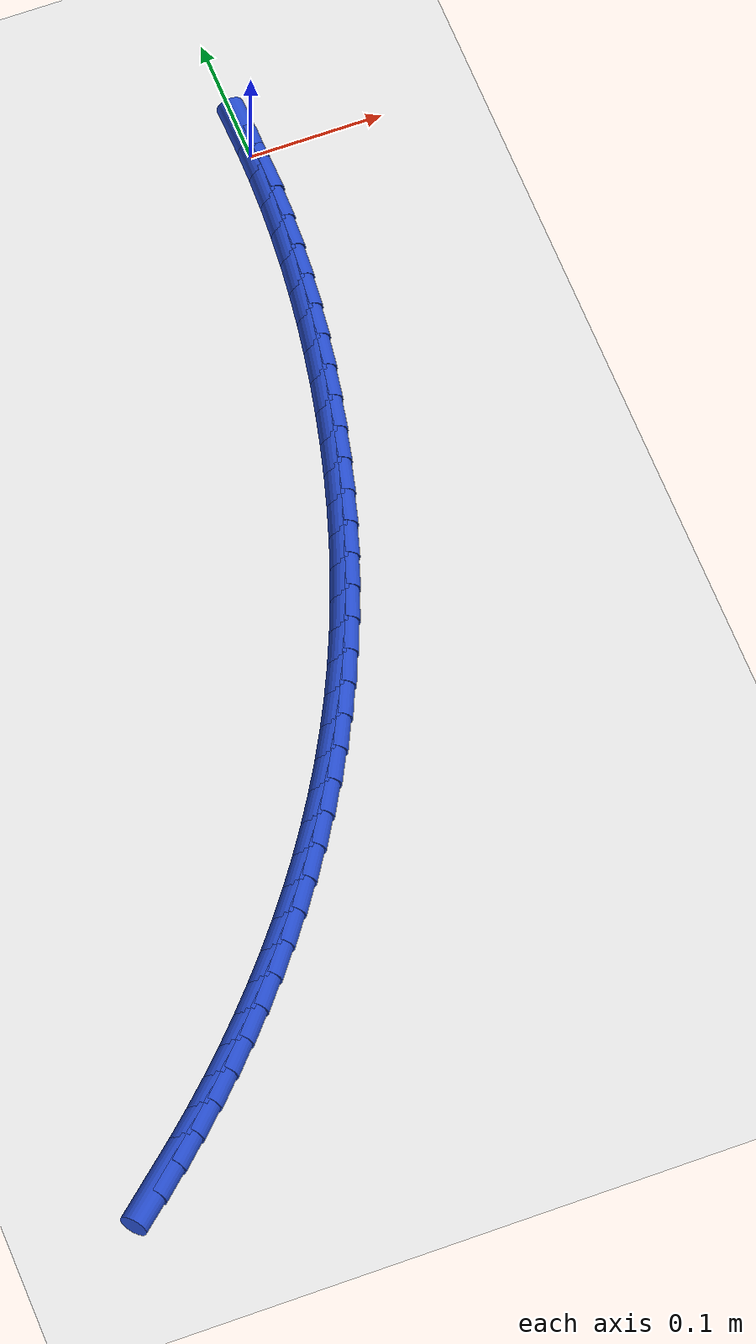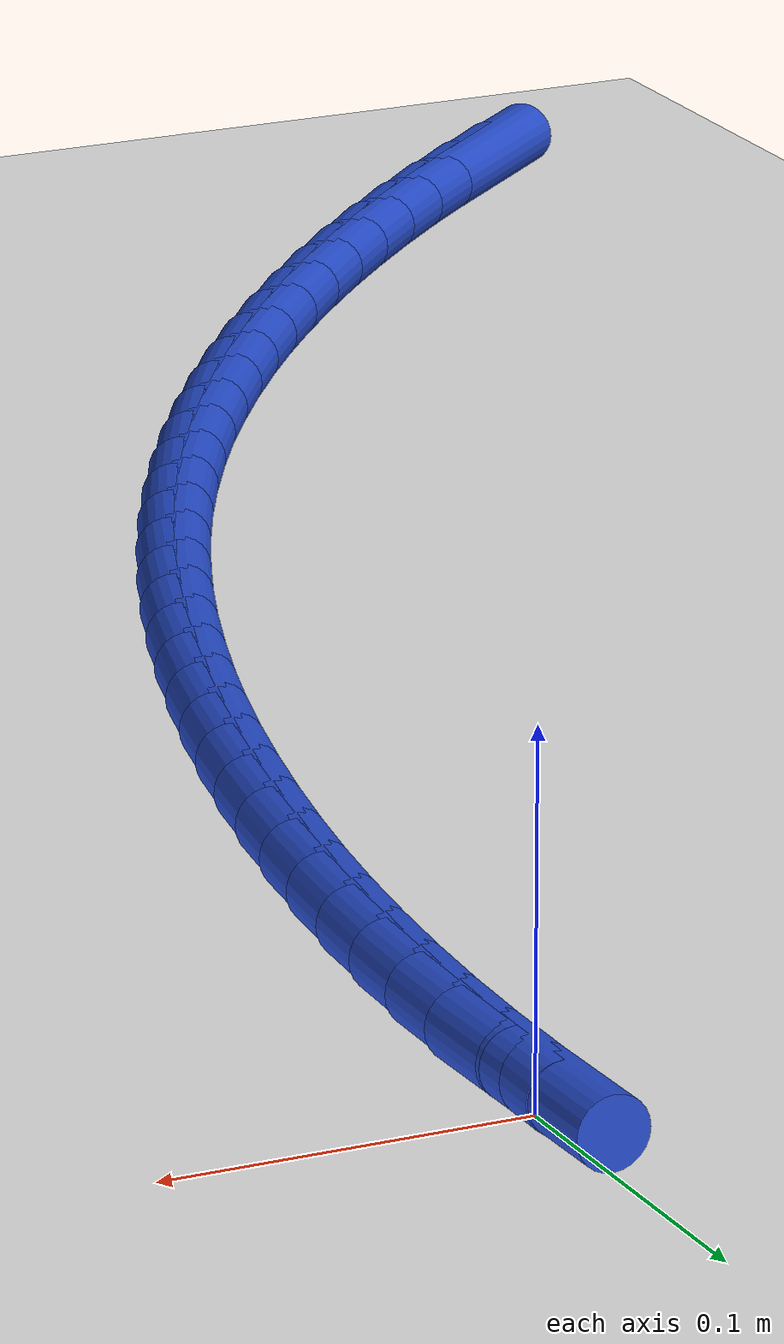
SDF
<sdf version="1.6">
 <world name="default">
  <model name="ground_plane">
   <static>1</static>
   <link name="link">
    <collision name="collision">
     <geometry><plane><normal>0 0 1</normal><size>100 100</size></plane></geometry>
     <surface><friction><ode><mu>100</mu><mu2>50</mu2></ode></friction></surface>
    </collision>
    <visual name="visual">
     <cast_shadows>0</cast_shadows>
     <geometry><plane><normal>0 0 1</normal><size>100 100</size></plane></geometry>
     <material>
      <script><uri>file://media/materials/scripts/gazebo.material</uri><name>Gazebo/WhiteGlow</name></script>
     </material>
    </visual>
   </link>
  </model>
  <model name="line">
   <link name="link_237">
    <pose>-0.33763719689922295 -0.7322113751263359 0.01 0 1.57 0.708793288716234</pose>
    <collision name="collision">
     <geometry><cylinder><radius>0.01</radius><length>0.08</length></cylinder></geometry>
    </collision>
    <visual name="visual">
     <material>
      <script><name>Gazebo/Blue</name><uri>file://media/materials/scripts/gazebo.material</uri></script>
     </material>
     <geometry><cylinder><radius>0.01</radius><length>0.08</length></cylinder></geometry>
    </visual>
   </link>
   <link name="link_238">
    <pose>-0.3184457679121901 -0.7157560178638568 0.01 0 1.57 0.7338859853642423</pose>
    <collision name="collision">
     <geometry><cylinder><radius>0.01</radius><length>0.08</length></cylinder></geometry>
    </collision>
    <visual name="visual">
     <material>
      <script><name>Gazebo/Blue</name><uri>file://media/materials/scripts/gazebo.material</uri></script>
     </material>
     <geometry><cylinder><radius>0.01</radius><length>0.08</length></cylinder></geometry>
    </visual>
   </link>
   <link name="link_239">
    <pose>-0.29963619331325864 -0.6987909069535245 0.01 0 1.57 0.759134266120713</pose>
    <collision name="collision">
     <geometry><cylinder><radius>0.01</radius><length>0.08</length></cylinder></geometry>
    </collision>
    <visual name="visual">
     <material>
      <script><name>Gazebo/Blue</name><uri>file://media/materials/scripts/gazebo.material</uri></script>
     </material>
     <geometry><cylinder><radius>0.01</radius><length>0.08</length></cylinder></geometry>
    </visual>
   </link>
   <link name="link_240">
    <pose>-0.2812326029690705 -0.6813294881691111 0.01 0 1.57 0.7845853250132963</pose>
    <collision name="collision">
     <geometry><cylinder><radius>0.01</radius><length>0.08</length></cylinder></geometry>
    </collision>
    <visual name="visual">
     <material>
      <script><name>Gazebo/Blue</name><uri>file://media/materials/scripts/gazebo.material</uri></script>
     </material>
     <geometry><cylinder><radius>0.01</radius><length>0.08</length></cylinder></geometry>
    </visual>
   </link>
   <link name="link_241">
    <pose>-0.26325912674627 -0.6633852072843901 0.01 0 1.57 0.8102856498708774</pose>
    <collision name="collision">
     <geometry><cylinder><radius>0.01</radius><length>0.08</length></cylinder></geometry>
    </collision>
    <visual name="visual">
     <material>
      <script><name>Gazebo/Blue</name><uri>file://media/materials/scripts/gazebo.material</uri></script>
     </material>
     <geometry><cylinder><radius>0.01</radius><length>0.08</length></cylinder></geometry>
    </visual>
   </link>
   <link name="link_242">
    <pose>-0.24573989451149886 -0.6449715100731331 0.01 0 1.57 0.8362810382621955</pose>
    <collision name="collision">
     <geometry><cylinder><radius>0.01</radius><length>0.08</length></cylinder></geometry>
    </collision>
    <visual name="visual">
     <material>
      <script><name>Gazebo/Blue</name><uri>file://media/materials/scripts/gazebo.material</uri></script>
     </material>
     <geometry><cylinder><radius>0.01</radius><length>0.08</length></cylinder></geometry>
    </visual>
   </link>
   <link name="link_243">
    <pose>-0.22869903613140155 -0.6261018423091141 0.01 0 1.57 0.8626165808161209</pose>
    <collision name="collision">
     <geometry><cylinder><radius>0.01</radius><length>0.08</length></cylinder></geometry>
    </collision>
    <visual name="visual">
     <material>
      <script><name>Gazebo/Blue</name><uri>file://media/materials/scripts/gazebo.material</uri></script>
     </material>
     <geometry><cylinder><radius>0.01</radius><length>0.08</length></cylinder></geometry>
    </visual>
   </link>
   <link name="link_244">
    <pose>-0.2121606814726199 -0.6067896497661045 0.01 0 1.57 0.8893366077714534</pose>
    <collision name="collision">
     <geometry><cylinder><radius>0.01</radius><length>0.08</length></cylinder></geometry>
    </collision>
    <visual name="visual">
     <material>
      <script><name>Gazebo/Blue</name><uri>file://media/materials/scripts/gazebo.material</uri></script>
     </material>
     <geometry><cylinder><radius>0.01</radius><length>0.08</length></cylinder></geometry>
    </visual>
   </link>
   <link name="link_245">
    <pose>-0.19614896040179802 -0.587048378217878 0.01 0 1.57 0.9164845943094814</pose>
    <collision name="collision">
     <geometry><cylinder><radius>0.01</radius><length>0.08</length></cylinder></geometry>
    </collision>
    <visual name="visual">
     <material>
      <script><name>Gazebo/Blue</name><uri>file://media/materials/scripts/gazebo.material</uri></script>
     </material>
     <geometry><cylinder><radius>0.01</radius><length>0.08</length></cylinder></geometry>
    </visual>
   </link>
   <link name="link_246">
    <pose>-0.18068800278557853 -0.5668914734382071 0.01 0 1.57 0.9441030199799666</pose>
    <collision name="collision">
     <geometry><cylinder><radius>0.01</radius><length>0.08</length></cylinder></geometry>
    </collision>
    <visual name="visual">
     <material>
      <script><name>Gazebo/Blue</name><uri>file://media/materials/scripts/gazebo.material</uri></script>
     </material>
     <geometry><cylinder><radius>0.01</radius><length>0.08</length></cylinder></geometry>
    </visual>
   </link>
   <link name="link_247">
    <pose>-0.16580193849060412 -0.5463323812008637 0.01 0 1.57 0.9722331773911833</pose>
    <collision name="collision">
     <geometry><cylinder><radius>0.01</radius><length>0.08</length></cylinder></geometry>
    </collision>
    <visual name="visual">
     <material>
      <script><name>Gazebo/Blue</name><uri>file://media/materials/scripts/gazebo.material</uri></script>
     </material>
     <geometry><cylinder><radius>0.01</radius><length>0.08</length></cylinder></geometry>
    </visual>
   </link>
   <link name="link_248">
    <pose>-0.15151489738351867 -0.5253845472796217 0.01 0 1.57 1.0009149253607827</pose>
    <collision name="collision">
     <geometry><cylinder><radius>0.01</radius><length>0.08</length></cylinder></geometry>
    </collision>
    <visual name="visual">
     <material>
      <script><name>Gazebo/Blue</name><uri>file://media/materials/scripts/gazebo.material</uri></script>
     </material>
     <geometry><cylinder><radius>0.01</radius><length>0.08</length></cylinder></geometry>
    </visual>
   </link>
   <link name="link_249">
    <pose>-0.13785100933096447 -0.5040614174482524 0.01 0 1.57 1.0301863819905186</pose>
    <collision name="collision">
     <geometry><cylinder><radius>0.01</radius><length>0.08</length></cylinder></geometry>
    </collision>
    <visual name="visual">
     <material>
      <script><name>Gazebo/Blue</name><uri>file://media/materials/scripts/gazebo.material</uri></script>
     </material>
     <geometry><cylinder><radius>0.01</radius><length>0.08</length></cylinder></geometry>
    </visual>
   </link>
   <link name="link_250">
    <pose>-0.12483440419958541 -0.4823764374805301 0.01 0 1.57 1.0600835537224376</pose>
    <collision name="collision">
     <geometry><cylinder><radius>0.01</radius><length>0.08</length></cylinder></geometry>
    </collision>
    <visual name="visual">
     <material>
      <script><name>Gazebo/Blue</name><uri>file://media/materials/scripts/gazebo.material</uri></script>
     </material>
     <geometry><cylinder><radius>0.01</radius><length>0.08</length></cylinder></geometry>
    </visual>
   </link>
   <link name="link_251">
    <pose>-0.11248921185602379 -0.46034305315022594 0.01 0 1.57 1.0906114489489507</pose>
    <collision name="collision">
     <geometry><cylinder><radius>0.01</radius><length>0.08</length></cylinder></geometry>
    </collision>
    <visual name="visual">
     <material>
      <script><name>Gazebo/Blue</name><uri>file://media/materials/scripts/gazebo.material</uri></script>
     </material>
     <geometry><cylinder><radius>0.01</radius><length>0.08</length></cylinder></geometry>
    </visual>
   </link>
   <link name="link_252">
    <pose>-0.10083881379892486 -0.43797482656895864 0.01 0 1.57 1.1210786805853508</pose>
    <collision name="collision">
     <geometry><cylinder><radius>0.01</radius><length>0.08</length></cylinder></geometry>
    </collision>
    <visual name="visual">
     <material>
      <script><name>Gazebo/Blue</name><uri>file://media/materials/scripts/gazebo.material</uri></script>
     </material>
     <geometry><cylinder><radius>0.01</radius><length>0.08</length></cylinder></geometry>
    </visual>
   </link>
   <link name="link_253">
    <pose>-0.08988784003216203 -0.41528823486941185 0.01 0 1.57 1.1507271143787299</pose>
    <collision name="collision">
     <geometry><cylinder><radius>0.01</radius><length>0.08</length></cylinder></geometry>
    </collision>
    <visual name="visual">
     <material>
      <script><name>Gazebo/Blue</name><uri>file://media/materials/scripts/gazebo.material</uri></script>
     </material>
     <geometry><cylinder><radius>0.01</radius><length>0.08</length></cylinder></geometry>
    </visual>
   </link>
   <link name="link_254">
    <pose>-0.07962127197084792 -0.3923028096634426 0.01 0 1.57 1.1795068086951512</pose>
    <collision name="collision">
     <geometry><cylinder><radius>0.01</radius><length>0.08</length></cylinder></geometry>
    </collision>
    <visual name="visual">
     <material>
      <script><name>Gazebo/Blue</name><uri>file://media/materials/scripts/gazebo.material</uri></script>
     </material>
     <geometry><cylinder><radius>0.01</radius><length>0.08</length></cylinder></geometry>
    </visual>
   </link>
   <link name="link_255">
    <pose>-0.07002316312045656 -0.3690382268114669 0.01 0 1.57 1.2074096898435152</pose>
    <collision name="collision">
     <geometry><cylinder><radius>0.01</radius><length>0.08</length></cylinder></geometry>
    </collision>
    <visual name="visual">
     <material>
      <script><name>Gazebo/Blue</name><uri>file://media/materials/scripts/gazebo.material</uri></script>
     </material>
     <geometry><cylinder><radius>0.01</radius><length>0.08</length></cylinder></geometry>
    </visual>
   </link>
   <link name="link_256">
    <pose>-0.06107756698646312 -0.345514162173903 0.01 0 1.57 1.2344336240428582</pose>
    <collision name="collision">
     <geometry><cylinder><radius>0.01</radius><length>0.08</length></cylinder></geometry>
    </collision>
    <visual name="visual">
     <material>
      <script><name>Gazebo/Blue</name><uri>file://media/materials/scripts/gazebo.material</uri></script>
     </material>
     <geometry><cylinder><radius>0.01</radius><length>0.08</length></cylinder></geometry>
    </visual>
   </link>
   <link name="link_257">
    <pose>-0.052768537074342016 -0.32175029161116747 0.01 0 1.57 1.2605817412958724</pose>
    <collision name="collision">
     <geometry><cylinder><radius>0.01</radius><length>0.08</length></cylinder></geometry>
    </collision>
    <visual name="visual">
     <material>
      <script><name>Gazebo/Blue</name><uri>file://media/materials/scripts/gazebo.material</uri></script>
     </material>
     <geometry><cylinder><radius>0.01</radius><length>0.08</length></cylinder></geometry>
    </visual>
   </link>
   <link name="link_258">
    <pose>-0.04508012688956767 -0.2977662909836765 0.01 0 1.57 1.2858617607587735</pose>
    <collision name="collision">
     <geometry><cylinder><radius>0.01</radius><length>0.08</length></cylinder></geometry>
    </collision>
    <visual name="visual">
     <material>
      <script><name>Gazebo/Blue</name><uri>file://media/materials/scripts/gazebo.material</uri></script>
     </material>
     <geometry><cylinder><radius>0.01</radius><length>0.08</length></cylinder></geometry>
    </visual>
   </link>
   <link name="link_259">
    <pose>-0.0379963899376152 -0.27358183615184867 0.01 0 1.57 1.3102853355268729</pose>
    <collision name="collision">
     <geometry><cylinder><radius>0.01</radius><length>0.08</length></cylinder></geometry>
    </collision>
    <visual name="visual">
     <material>
      <script><name>Gazebo/Blue</name><uri>file://media/materials/scripts/gazebo.material</uri></script>
     </material>
     <geometry><cylinder><radius>0.01</radius><length>0.08</length></cylinder></geometry>
    </visual>
   </link>
   <link name="link_260">
    <pose>-0.03150137972395884 -0.24921660297609968 0.01 0 1.57 1.3338705515566796</pose>
    <collision name="collision">
     <geometry><cylinder><radius>0.01</radius><length>0.08</length></cylinder></geometry>
    </collision>
    <visual name="visual">
     <material>
      <script><name>Gazebo/Blue</name><uri>file://media/materials/scripts/gazebo.material</uri></script>
     </material>
     <geometry><cylinder><radius>0.01</radius><length>0.08</length></cylinder></geometry>
    </visual>
   </link>
   <link name="link_261">
    <pose>-0.025579230981775815 -0.22469026820150792 0.01 0 1.57 1.3570507442943696</pose>
    <collision name="collision">
     <geometry><cylinder><radius>0.01</radius><length>0.08</length></cylinder></geometry>
    </collision>
    <visual name="visual">
     <material>
      <script><name>Gazebo/Blue</name><uri>file://media/materials/scripts/gazebo.material</uri></script>
     </material>
     <geometry><cylinder><radius>0.01</radius><length>0.08</length></cylinder></geometry>
    </visual>
   </link>
   <link name="link_262">
    <pose>-0.020224839596962186 -0.20002262577406124 0.01 0 1.57 1.3806829156643894</pose>
    <collision name="collision">
     <geometry><cylinder><radius>0.01</radius><length>0.08</length></cylinder></geometry>
    </collision>
    <visual name="visual">
     <material>
      <script><name>Gazebo/Blue</name><uri>file://media/materials/scripts/gazebo.material</uri></script>
     </material>
     <geometry><cylinder><radius>0.01</radius><length>0.08</length></cylinder></geometry>
    </visual>
   </link>
   <link name="link_263">
    <pose>-0.015454522598141037 -0.17523370293980045 0.01 0 1.57 1.4049037675580858</pose>
    <collision name="collision">
     <geometry><cylinder><radius>0.01</radius><length>0.08</length></cylinder></geometry>
    </collision>
    <visual name="visual">
     <material>
      <script><name>Gazebo/Blue</name><uri>file://media/materials/scripts/gazebo.material</uri></script>
     </material>
     <geometry><cylinder><radius>0.01</radius><length>0.08</length></cylinder></geometry>
    </visual>
   </link>
   <link name="link_264">
    <pose>-0.011287132528000447 -0.15034355455932932 0.01 0 1.57 1.4297518050387608</pose>
    <collision name="collision">
     <geometry><cylinder><radius>0.01</radius><length>0.08</length></cylinder></geometry>
    </collision>
    <visual name="visual">
     <material>
      <script><name>Gazebo/Blue</name><uri>file://media/materials/scripts/gazebo.material</uri></script>
     </material>
     <geometry><cylinder><radius>0.01</radius><length>0.08</length></cylinder></geometry>
    </visual>
   </link>
   <link name="link_265">
    <pose>-0.007741521929229025 -0.12537223549325466 0.01 0 1.57 1.455264527584053</pose>
    <collision name="collision">
     <geometry><cylinder><radius>0.01</radius><length>0.08</length></cylinder></geometry>
    </collision>
    <visual name="visual">
     <material>
      <script><name>Gazebo/Blue</name><uri>file://media/materials/scripts/gazebo.material</uri></script>
     </material>
     <geometry><cylinder><radius>0.01</radius><length>0.08</length></cylinder></geometry>
    </visual>
   </link>
   <link name="link_266">
    <pose>-0.004836543344514916 -0.10033980060218019 0.01 0 1.57 1.4814781264360748</pose>
    <collision name="collision">
     <geometry><cylinder><radius>0.01</radius><length>0.08</length></cylinder></geometry>
    </collision>
    <visual name="visual">
     <material>
      <script><name>Gazebo/Blue</name><uri>file://media/materials/scripts/gazebo.material</uri></script>
     </material>
     <geometry><cylinder><radius>0.01</radius><length>0.08</length></cylinder></geometry>
    </visual>
   </link>
   <link name="link_267">
    <pose>-0.0025910493165466567 -0.07526630474671275 0.01 0 1.57 1.508427112767361</pose>
    <collision name="collision">
     <geometry><cylinder><radius>0.01</radius><length>0.08</length></cylinder></geometry>
    </collision>
    <visual name="visual">
     <material>
      <script><name>Gazebo/Blue</name><uri>file://media/materials/scripts/gazebo.material</uri></script>
     </material>
     <geometry><cylinder><radius>0.01</radius><length>0.08</length></cylinder></geometry>
    </visual>
   </link>
   <link name="link_268">
    <pose>-0.0010238923880125127 -0.05017180278745686 0.01 0 1.57 1.5361438726326324</pose>
    <collision name="collision">
     <geometry><cylinder><radius>0.01</radius><length>0.08</length></cylinder></geometry>
    </collision>
    <visual name="visual">
     <material>
      <script><name>Gazebo/Blue</name><uri>file://media/materials/scripts/gazebo.material</uri></script>
     </material>
     <geometry><cylinder><radius>0.01</radius><length>0.08</length></cylinder></geometry>
    </visual>
   </link>
   <link name="link_269">
    <pose>-0.00015392510160082548 -0.025076349585017064 0.01 0 1.57 1.5646581459597948</pose>
    <collision name="collision">
     <geometry><cylinder><radius>0.01</radius><length>0.08</length></cylinder></geometry>
    </collision>
    <visual name="visual">
     <material>
      <script><name>Gazebo/Blue</name><uri>file://media/materials/scripts/gazebo.material</uri></script>
     </material>
     <geometry><cylinder><radius>0.01</radius><length>0.08</length></cylinder></geometry>
    </visual>
   </link>
   <link name="link_270">
    <pose>-8.239936510889834e-18 -1.0408340855860843e-16 0.01 0 1.57 -1.5475962247921573</pose>
    <collision name="collision">
     <geometry><cylinder><radius>0.01</radius><length>0.08</length></cylinder></geometry>
    </collision>
    <visual name="visual">
     <material>
      <script><name>Gazebo/Blue</name><uri>file://media/materials/scripts/gazebo.material</uri></script>
     </material>
     <geometry><cylinder><radius>0.01</radius><length>0.08</length></cylinder></geometry>
    </visual>
   </link>
  </model>
 </world>
</sdf>
